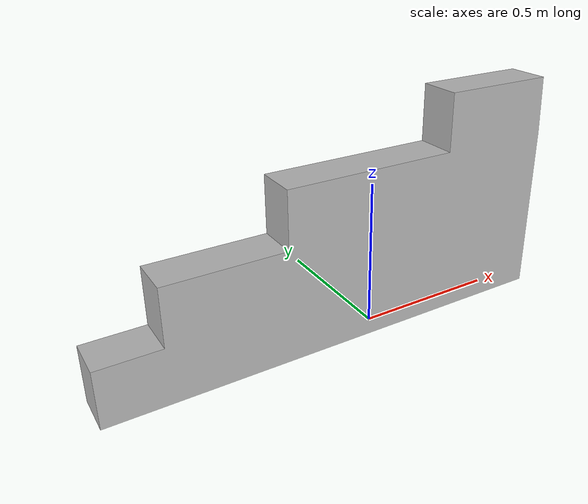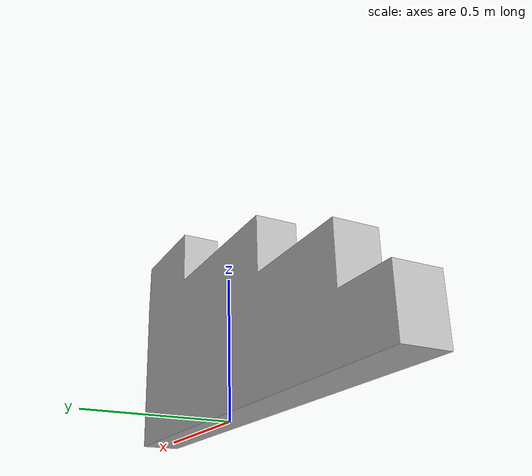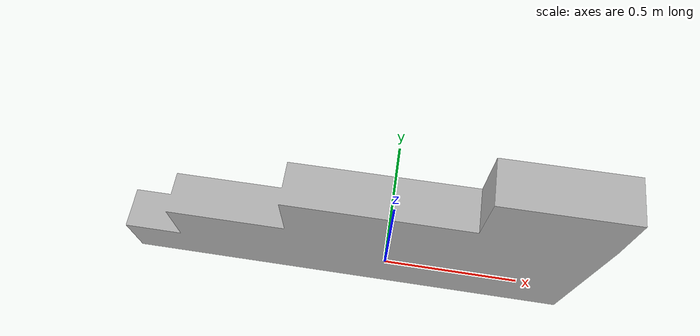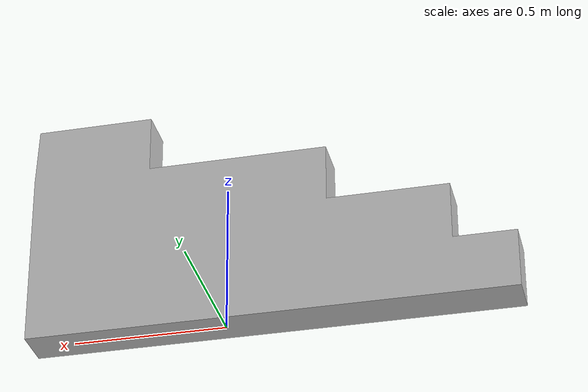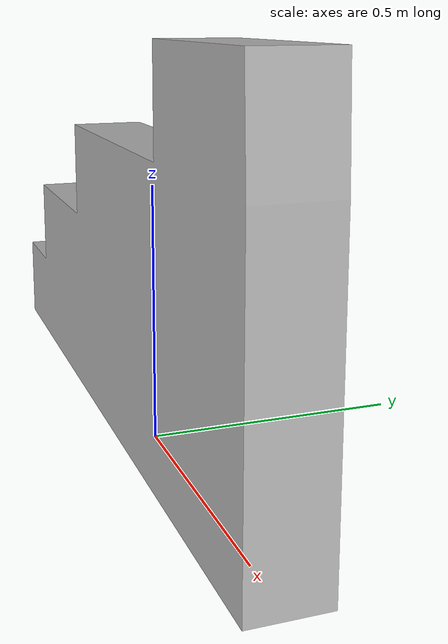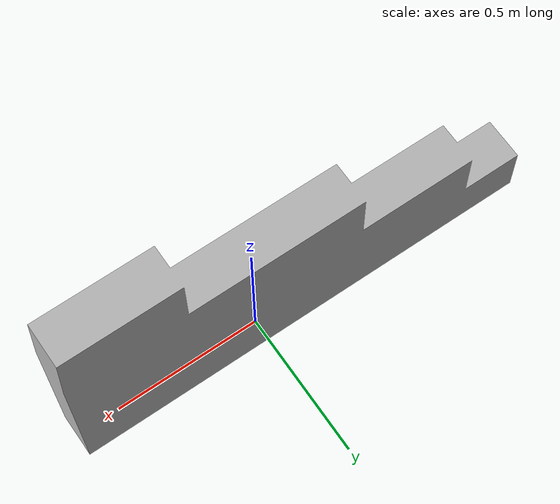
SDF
<?xml version="1.0" ?>
<sdf version="1.5">
  <model name="block_wall">
    <pose>0 0 0.30924 0 0 0</pose>
    <static>true</static>
    <link name="blocks">
      <collision name="collision">
        <geometry>
          <mesh>
            <uri>model://drc_practice_block_wall/meshes/block_wall.dae</uri>
          </mesh>
        </geometry>
        <surface>
          <bounce>
            <restitution_coefficient>0.0</restitution_coefficient>
            <threshold>100000</threshold>
          </bounce>
          <friction>
            <ode>
              <mu>100</mu>
              <mu2>50</mu2>
            </ode>
          </friction>
          <contact>
            <ode>
              <soft_cfm>0.0</soft_cfm>
              <!--"sponginess", 0.0=hard-->
              <soft_erp>0.2</soft_erp>
              <max_vel>0.0</max_vel>
              <min_depth>0.0</min_depth>
            </ode>
          </contact>
        </surface>
      </collision>
      <visual name="visual">
        <geometry>
          <mesh>
            <uri>model://drc_practice_block_wall/meshes/block_wall.dae</uri>
          </mesh>
        </geometry>
      </visual>
    </link>
  </model>
</sdf>
